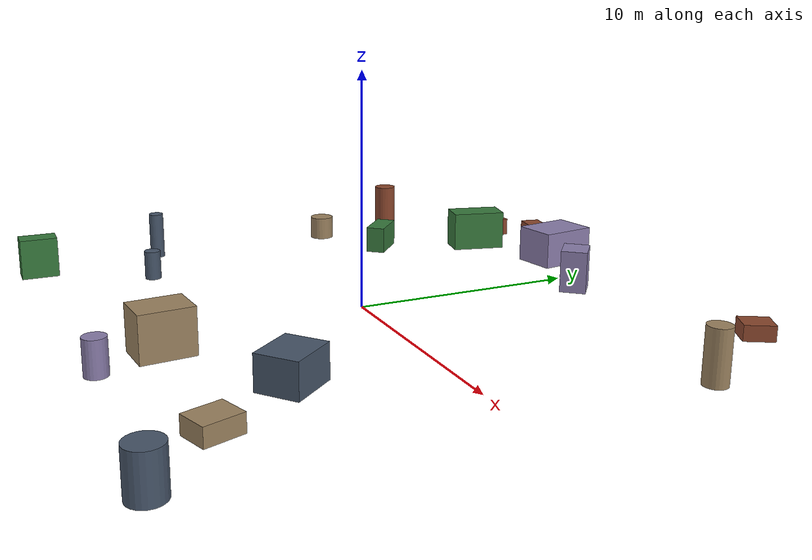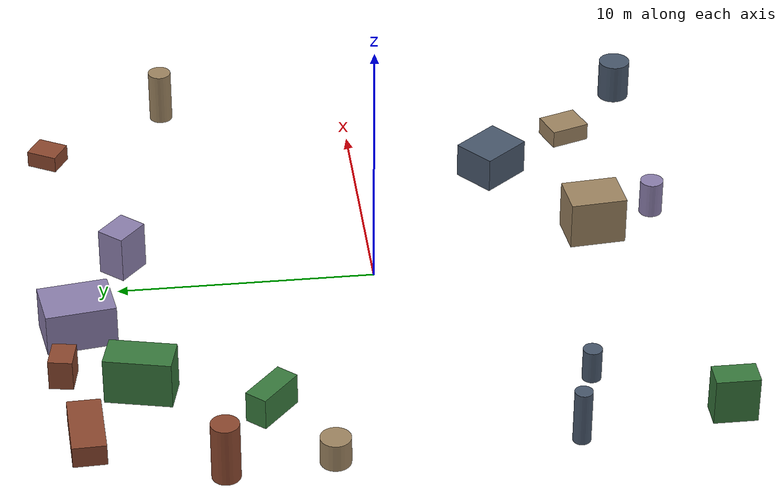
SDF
<sdf version="1.10">
 <world name="robotx_task1_uav_view">
  <gravity>0 0 -9.81</gravity>
  <physics name="physics" type="ode">
   <max_step_size>0.002</max_step_size>
   <real_time_factor>1.0</real_time_factor>
  </physics>
  <scene>
   <ambient>0.20 0.19 0.17 1.0</ambient>
   <background>0.45 0.48 0.42 1.0</background>
   <shadows>true</shadows>
   <grid>false</grid>
  </scene>
  <light name="sun" type="directional">
   <pose>0 0 300 0 0 0</pose>
   <diffuse>0.60 0.58 0.52 1.0</diffuse>
   <specular>0.30 0.35 0.28 1.0</specular>
   <direction>0.22 -0.10 -1.0</direction>
   <attenuation>
    <range>2500</range>
    <constant>0.85</constant>
    <linear>0.001</linear>
    <quadratic>0.00005</quadratic>
   </attenuation>
  </light>
  <plugin filename="gz-sim-physics-system" name="gz::sim::systems::Physics"/>
  <plugin filename="gz-sim-user-commands-system" name="gz::sim::systems::UserCommands"/>
  <plugin filename="gz-sim-scene-broadcaster-system" name="gz::sim::systems::SceneBroadcaster"/>
  <plugin filename="gz-sim-sensors-system" name="gz::sim::systems::Sensors">
   <render_engine>ogre2</render_engine>
  </plugin>
  <model name="scene_clutter_box_000">
   <static>true</static>
   <pose>1.943 -8.973 0.981 0 0 1.659550</pose>
   <link name="link">
    <visual name="v">
     <geometry><box><size>2.227 1.721 1.922</size></box></geometry>
     <material><ambient>0.45 0.38 0.32 1.0</ambient><diffuse>0.62 0.52 0.38 1.0</diffuse></material>
    </visual>
   </link>
  </model>
  <model name="scene_clutter_cyl_001">
   <static>true</static>
   <pose>-7.622 -7.235 0.704 0 0 0.491838</pose>
   <link name="link">
    <visual name="v">
     <geometry><cylinder><radius>0.364</radius><length>1.308</length></cylinder></geometry>
     <material><ambient>0.18 0.22 0.28 1.0</ambient><diffuse>0.28 0.34 0.42 1.0</diffuse></material>
    </visual>
   </link>
  </model>
  <model name="scene_clutter_box_002">
   <static>true</static>
   <pose>-9.347 11.525 0.442 0 0 0.037604</pose>
   <link name="link">
    <visual name="v">
     <geometry><box><size>2.807 1.265 0.845</size></box></geometry>
     <material><ambient>0.35 0.16 0.12 1.0</ambient><diffuse>0.55 0.28 0.18 1.0</diffuse></material>
    </visual>
   </link>
  </model>
  <model name="scene_clutter_box_003">
   <static>true</static>
   <pose>-6.656 9.420 0.948 0 0 2.910413</pose>
   <link name="link">
    <visual name="v">
     <geometry><box><size>1.388 2.557 1.857</size></box></geometry>
     <material><ambient>0.12 0.30 0.14 1.0</ambient><diffuse>0.22 0.48 0.24 1.0</diffuse></material>
    </visual>
   </link>
  </model>
  <model name="scene_clutter_box_004">
   <static>true</static>
   <pose>1.612 9.715 0.959 0 0 2.424402</pose>
   <link name="link">
    <visual name="v">
     <geometry><box><size>1.426 1.144 1.879</size></box></geometry>
     <material><ambient>0.40 0.35 0.50 1.0</ambient><diffuse>0.55 0.50 0.68 1.0</diffuse></material>
    </visual>
   </link>
  </model>
  <model name="scene_clutter_box_005">
   <static>true</static>
   <pose>9.208 -9.032 0.381 0 0 1.898371</pose>
   <link name="link">
    <visual name="v">
     <geometry><box><size>1.581 1.272 0.722</size></box></geometry>
     <material><ambient>0.45 0.38 0.32 1.0</ambient><diffuse>0.62 0.52 0.38 1.0</diffuse></material>
    </visual>
   </link>
  </model>
  <model name="scene_clutter_box_006">
   <static>true</static>
   <pose>6.748 -5.593 0.730 0 0 2.255572</pose>
   <link name="link">
    <visual name="v">
     <geometry><box><size>2.109 1.779 1.420</size></box></geometry>
     <material><ambient>0.18 0.22 0.28 1.0</ambient><diffuse>0.28 0.34 0.42 1.0</diffuse></material>
    </visual>
   </link>
  </model>
  <model name="scene_clutter_cyl_007">
   <static>true</static>
   <pose>-11.922 6.686 1.224 0 0 -0.884814</pose>
   <link name="link">
    <visual name="v">
     <geometry><cylinder><radius>0.534</radius><length>2.349</length></cylinder></geometry>
     <material><ambient>0.35 0.16 0.12 1.0</ambient><diffuse>0.55 0.28 0.18 1.0</diffuse></material>
    </visual>
   </link>
  </model>
  <model name="scene_clutter_box_008">
   <static>true</static>
   <pose>-8.295 4.741 0.647 0 0 0.844855</pose>
   <link name="link">
    <visual name="v">
     <geometry><box><size>0.896 1.960 1.254</size></box></geometry>
     <material><ambient>0.12 0.30 0.14 1.0</ambient><diffuse>0.22 0.48 0.24 1.0</diffuse></material>
    </visual>
   </link>
  </model>
  <model name="scene_clutter_cyl_009">
   <static>true</static>
   <pose>3.158 -11.550 0.781 0 0 -1.905212</pose>
   <link name="link">
    <visual name="v">
     <geometry><cylinder><radius>0.459</radius><length>1.462</length></cylinder></geometry>
     <material><ambient>0.40 0.35 0.50 1.0</ambient><diffuse>0.55 0.50 0.68 1.0</diffuse></material>
    </visual>
   </link>
  </model>
  <model name="scene_clutter_cyl_010">
   <static>true</static>
   <pose>-11.541 2.735 0.602 0 0 -0.549855</pose>
   <link name="link">
    <visual name="v">
     <geometry><cylinder><radius>0.579</radius><length>1.105</length></cylinder></geometry>
     <material><ambient>0.45 0.38 0.32 1.0</ambient><diffuse>0.62 0.52 0.38 1.0</diffuse></material>
    </visual>
   </link>
  </model>
  <model name="scene_clutter_cyl_011">
   <static>true</static>
   <pose>-11.282 -6.226 1.134 0 0 -2.672641</pose>
   <link name="link">
    <visual name="v">
     <geometry><cylinder><radius>0.339</radius><length>2.169</length></cylinder></geometry>
     <material><ambient>0.18 0.22 0.28 1.0</ambient><diffuse>0.28 0.34 0.42 1.0</diffuse></material>
    </visual>
   </link>
  </model>
  <model name="scene_clutter_box_012">
   <static>true</static>
   <pose>-5.464 12.258 0.618 0 0 2.963754</pose>
   <link name="link">
    <visual name="v">
     <geometry><box><size>1.197 0.917 1.196</size></box></geometry>
     <material><ambient>0.35 0.16 0.12 1.0</ambient><diffuse>0.55 0.28 0.18 1.0</diffuse></material>
    </visual>
   </link>
  </model>
  <model name="scene_clutter_box_013">
   <static>true</static>
   <pose>-10.361 -11.995 0.936 0 0 -0.001079</pose>
   <link name="link">
    <visual name="v">
     <geometry><box><size>1.032 1.659 1.833</size></box></geometry>
     <material><ambient>0.12 0.30 0.14 1.0</ambient><diffuse>0.22 0.48 0.24 1.0</diffuse></material>
    </visual>
   </link>
  </model>
  <model name="scene_clutter_box_014">
   <static>true</static>
   <pose>-2.675 11.609 0.858 0 0 -1.425880</pose>
   <link name="link">
    <visual name="v">
     <geometry><box><size>2.700 1.998 1.675</size></box></geometry>
     <material><ambient>0.40 0.35 0.50 1.0</ambient><diffuse>0.55 0.50 0.68 1.0</diffuse></material>
    </visual>
   </link>
  </model>
  <model name="scene_clutter_cyl_015">
   <static>true</static>
   <pose>12.597 7.593 1.136 0 0 -2.040628</pose>
   <link name="link">
    <visual name="v">
     <geometry><cylinder><radius>0.467</radius><length>2.173</length></cylinder></geometry>
     <material><ambient>0.45 0.38 0.32 1.0</ambient><diffuse>0.62 0.52 0.38 1.0</diffuse></material>
    </visual>
   </link>
  </model>
  <model name="scene_clutter_cyl_016">
   <static>true</static>
   <pose>12.208 -11.685 0.879 0 0 3.004543</pose>
   <link name="link">
    <visual name="v">
     <geometry><cylinder><radius>0.637</radius><length>1.659</length></cylinder></geometry>
     <material><ambient>0.18 0.22 0.28 1.0</ambient><diffuse>0.28 0.34 0.42 1.0</diffuse></material>
    </visual>
   </link>
  </model>
  <model name="scene_clutter_box_017">
   <static>true</static>
   <pose>9.620 12.434 0.351 0 0 -0.508288</pose>
   <link name="link">
    <visual name="v">
     <geometry><box><size>1.085 1.257 0.663</size></box></geometry>
     <material><ambient>0.35 0.16 0.12 1.0</ambient><diffuse>0.55 0.28 0.18 1.0</diffuse></material>
    </visual>
   </link>
  </model>
  <model name="uav_dataset_camera">
   <static>false</static>
   <pose>0 0 26 0 0 0</pose>
   <plugin filename="librobotx_overhead_motion_plugin.dylib" name="robotx::OverheadMotionPlugin">
    <radius_x_m>10.09392</radius_x_m>
    <radius_y_m>9.89160</radius_y_m>
    <angular_speed_rad_s>0.054445</angular_speed_rad_s>
    <phase_rad>0.272950</phase_rad>
    <z_wobble_m>0.02395</z_wobble_m>
    <z_wobble_hz>0.07224</z_wobble_hz>
    <z_wobble_phase_rad>5.622154</z_wobble_phase_rad>
   </plugin>
   <link name="camera_link">
    <gravity>false</gravity>
    <sensor name="top_down_rgb" type="camera">
     <always_on>true</always_on>
     <update_rate>20</update_rate>
     <pose>0 0 0 0 1.57079632679 0</pose>
     <camera>
      <horizontal_fov>1.05</horizontal_fov>
      <image><width>1920</width><height>1080</height><format>R8G8B8</format></image>
      <clip><near>0.2</near><far>600</far></clip>
     </camera>
     <topic>/robotx/uav/camera/image_raw</topic>
     <visualize>true</visualize>
    </sensor>
   </link>
  </model>
 </world>
</sdf>
